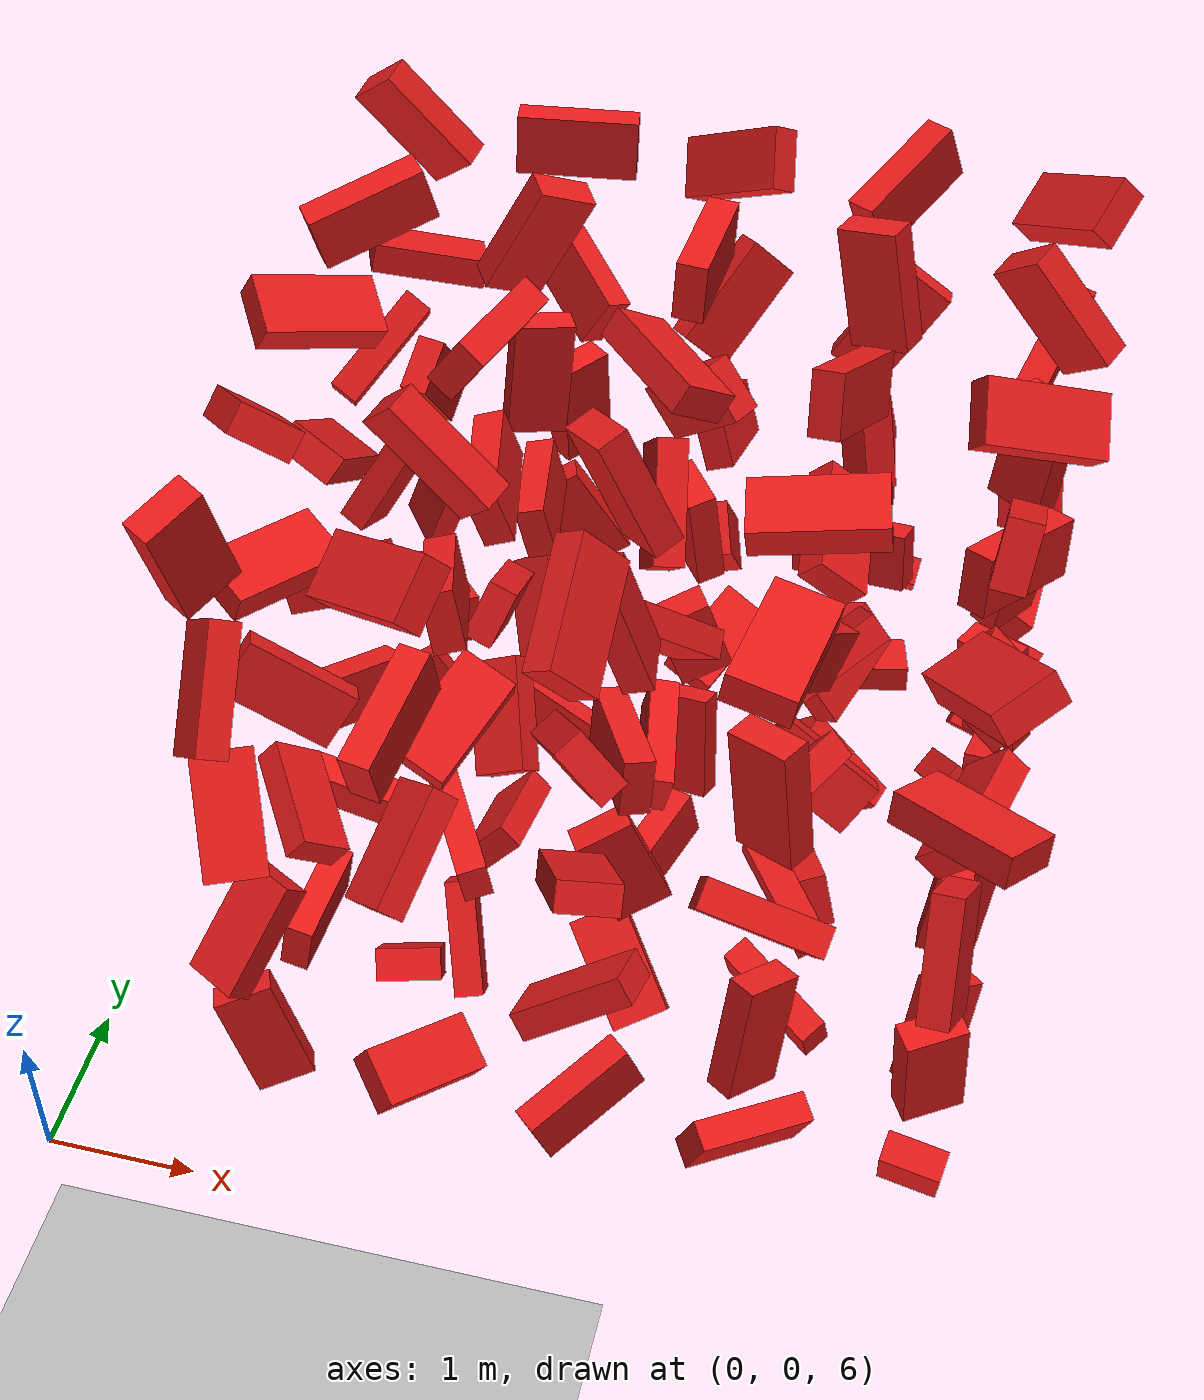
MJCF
<mujoco model="Humanoid and 100 objects">
    <compiler angle="degree"/>

    <option timestep="0.01" iterations="50" solver="PGS" jacobian="sparse" cone="elliptic" tolerance="1e-10"/>

    <size njmax="5000" nconmax="2000" nstack="1000000000"/>

    <default>
        <geom solimp=".9 .9 .01"/>

        <default class="object5">
			<geom type="box" material="geom" rgba=".9 .1 .1 1" size="0.400000 0.200000 0.100000"/>
        </default>
    </default>

    <asset>
        <texture type="skybox" builtin="gradient" width="128" height="128" rgb1=".4 .6 .8" rgb2="0 0 0"/>
        <texture name="texgeom" type="cube" builtin="flat" mark="cross" width="128" height="128"
            rgb1="0.6 0.6 0.6" rgb2="0.6 0.6 0.6" markrgb="1 1 1"/>
        <texture name="texplane" type="2d" builtin="checker" rgb1=".4 .4 .4" rgb2=".6 .6 .6"
            width="512" height="512"/>
        <material name='geom' texture="texgeom" texuniform="true"/>
        <material name='MatPlane' reflectance='0.3' texture="texplane" texrepeat="1 1" texuniform="true"/>
    </asset>

    <visual>
        <quality shadowsize="4096" offsamples="8"/>
        <map znear="0.1" force="0.05"/>
    </visual>

    <statistic extent="4"/>

    <worldbody>
        <light directional="true" diffuse=".8 .8 .8" pos="0 0 10" dir="0 0 -10"/>

        <geom pos="0 0 0" type="plane" size="3 3 .5" rgba=".7 .7 .7 1" material="MatPlane"/>
		<body pos="1.100061 1.100535 6.100487" quat="0.704673 0.416221 0.464231 -0.338654"> <freejoint/> <geom class="object5"/> </body>
		<body pos="1.100556 1.100531 7.200384" quat="0.468841 0.335573 0.169987 -0.799177"> <freejoint/> <geom class="object5"/> </body>
		<body pos="1.100150 1.100321 8.300873" quat="0.504620 0.301904 -0.173742 0.789954"> <freejoint/> <geom class="object5"/> </body>
		<body pos="1.100852 1.100389 9.400680" quat="-0.063000 -0.672238 -0.499796 -0.542523"> <freejoint/> <geom class="object5"/> </body>
		<body pos="1.100582 1.100323 10.500027" quat="0.664069 0.298463 0.680334 -0.084129"> <freejoint/> <geom class="object5"/> </body>
		<body pos="1.100997 2.200310 6.100272" quat="-0.436670 0.534024 -0.550363 0.470359"> <freejoint/> <geom class="object5"/> </body>
		<body pos="1.100860 2.200497 7.200872" quat="0.415994 0.256129 0.259776 0.832985"> <freejoint/> <geom class="object5"/> </body>
		<body pos="1.100983 2.200670 8.300147" quat="-0.812085 -0.497435 -0.287675 0.101585"> <freejoint/> <geom class="object5"/> </body>
		<body pos="1.100398 2.200049 9.400501" quat="-0.134124 -0.464464 0.870096 0.096005"> <freejoint/> <geom class="object5"/> </body>
		<body pos="1.100354 2.200086 10.500407" quat="-0.063682 -0.495941 -0.768959 0.398358"> <freejoint/> <geom class="object5"/> </body>
		<body pos="1.100213 3.300297 6.100576" quat="0.629227 0.773109 -0.033692 -0.072392"> <freejoint/> <geom class="object5"/> </body>
		<body pos="1.100501 3.300758 7.200293" quat="0.443370 0.286420 -0.698497 -0.483206"> <freejoint/> <geom class="object5"/> </body>
		<body pos="1.100659 3.300858 8.300393" quat="0.288240 0.722197 0.628343 0.023131"> <freejoint/> <geom class="object5"/> </body>
		<body pos="1.100634 3.300380 9.400091" quat="-0.385703 -0.597516 0.700863 -0.054757"> <freejoint/> <geom class="object5"/> </body>
		<body pos="1.100766 3.300747 10.500470" quat="-0.155912 0.915060 0.299749 -0.220244"> <freejoint/> <geom class="object5"/> </body>
		<body pos="1.100312 4.400310 6.100719" quat="0.307336 0.087487 0.622277 -0.714606"> <freejoint/> <geom class="object5"/> </body>
		<body pos="1.100891 4.400625 7.200060" quat="0.735603 0.603398 -0.300745 0.065968"> <freejoint/> <geom class="object5"/> </body>
		<body pos="1.100348 4.400365 8.300513" quat="0.511188 -0.039595 0.831201 -0.214998"> <freejoint/> <geom class="object5"/> </body>
		<body pos="1.100847 4.400034 9.400777" quat="-0.293703 -0.420367 0.261925 0.817573"> <freejoint/> <geom class="object5"/> </body>
		<body pos="1.100584 4.400867 10.500522" quat="-0.297311 0.135376 -0.721807 0.610143"> <freejoint/> <geom class="object5"/> </body>
		<body pos="1.100407 5.500135 6.100582" quat="-0.582620 0.684326 -0.274092 0.342235"> <freejoint/> <geom class="object5"/> </body>
		<body pos="1.100830 5.500063 7.200237" quat="0.177933 0.548926 0.313575 -0.754116"> <freejoint/> <geom class="object5"/> </body>
		<body pos="1.100684 5.500898 8.300058" quat="-0.673669 -0.170733 0.659921 0.285524"> <freejoint/> <geom class="object5"/> </body>
		<body pos="1.100824 5.500869 9.400630" quat="0.169850 -0.098421 -0.134963 -0.971210"> <freejoint/> <geom class="object5"/> </body>
		<body pos="1.100029 5.500807 10.500675" quat="-0.533394 -0.740341 -0.255958 0.319174"> <freejoint/> <geom class="object5"/> </body>
		<body pos="2.200226 1.100040 6.100089" quat="-0.388415 0.235299 -0.158183 0.876782"> <freejoint/> <geom class="object5"/> </body>
		<body pos="2.200525 1.100830 7.200518" quat="-0.255966 -0.724682 0.546622 -0.332450"> <freejoint/> <geom class="object5"/> </body>
		<body pos="2.200554 1.100639 8.300754" quat="-0.079167 -0.775439 -0.491007 -0.389023"> <freejoint/> <geom class="object5"/> </body>
		<body pos="2.200516 1.100249 9.400637" quat="0.382689 0.515924 -0.472985 -0.603040"> <freejoint/> <geom class="object5"/> </body>
		<body pos="2.200840 1.100213 10.500720" quat="0.254940 -0.912648 0.190472 -0.256514"> <freejoint/> <geom class="object5"/> </body>
		<body pos="2.200339 2.200549 6.100856" quat="-0.185170 -0.582067 -0.342579 -0.713827"> <freejoint/> <geom class="object5"/> </body>
		<body pos="2.200908 2.200950 7.200705" quat="-0.689600 0.523398 -0.387884 0.316311"> <freejoint/> <geom class="object5"/> </body>
		<body pos="2.200913 2.200094 8.300297" quat="0.560727 0.039385 0.243092 -0.790531"> <freejoint/> <geom class="object5"/> </body>
		<body pos="2.200561 2.200956 9.400727" quat="0.544676 -0.574734 0.289922 -0.537545"> <freejoint/> <geom class="object5"/> </body>
		<body pos="2.200724 2.200046 10.500585" quat="-0.336993 -0.144731 0.777345 -0.511101"> <freejoint/> <geom class="object5"/> </body>
		<body pos="2.200494 3.300089 6.100841" quat="0.194887 -0.664356 0.618045 -0.372385"> <freejoint/> <geom class="object5"/> </body>
		<body pos="2.200230 3.300778 7.200992" quat="0.071278 -0.604693 -0.675311 -0.416198"> <freejoint/> <geom class="object5"/> </body>
		<body pos="2.200310 3.300812 8.300856" quat="-0.524733 -0.423338 -0.698254 -0.240587"> <freejoint/> <geom class="object5"/> </body>
		<body pos="2.200676 3.300955 9.400050" quat="0.391804 -0.496748 -0.629360 0.451261"> <freejoint/> <geom class="object5"/> </body>
		<body pos="2.200971 3.300370 10.500655" quat="0.268507 -0.552094 0.691408 -0.380856"> <freejoint/> <geom class="object5"/> </body>
		<body pos="2.200533 4.400831 6.100682" quat="0.038412 -0.202173 -0.795197 -0.570362"> <freejoint/> <geom class="object5"/> </body>
		<body pos="2.200699 4.400418 7.200152" quat="0.494917 -0.637914 0.589513 0.024427"> <freejoint/> <geom class="object5"/> </body>
		<body pos="2.200164 4.400746 8.300430" quat="-0.484746 -0.587678 0.515394 0.392460"> <freejoint/> <geom class="object5"/> </body>
		<body pos="2.200267 4.400285 9.400607" quat="-0.584482 0.433253 0.605306 0.322920"> <freejoint/> <geom class="object5"/> </body>
		<body pos="2.200924 4.400107 10.500909" quat="0.474855 0.213387 0.741204 -0.423787"> <freejoint/> <geom class="object5"/> </body>
		<body pos="2.200991 5.500023 6.100395" quat="0.571252 0.579045 -0.276950 -0.511544"> <freejoint/> <geom class="object5"/> </body>
		<body pos="2.200202 5.500196 7.200852" quat="0.420239 -0.266347 -0.681017 -0.537284"> <freejoint/> <geom class="object5"/> </body>
		<body pos="2.200297 5.500896 8.300991" quat="-0.672321 -0.247202 -0.665057 0.211128"> <freejoint/> <geom class="object5"/> </body>
		<body pos="2.200252 5.500426 9.400509" quat="-0.415164 0.071746 0.566929 -0.707872"> <freejoint/> <geom class="object5"/> </body>
		<body pos="2.200750 5.500480 10.500999" quat="-0.052612 0.065567 -0.656690 0.749461"> <freejoint/> <geom class="object5"/> </body>
		<body pos="3.300622 1.100450 6.100910" quat="0.664250 -0.610453 -0.396957 0.168952"> <freejoint/> <geom class="object5"/> </body>
		<body pos="3.300188 1.100266 7.200174" quat="0.019612 0.291696 -0.196875 -0.935825"> <freejoint/> <geom class="object5"/> </body>
		<body pos="3.300350 1.100529 8.300992" quat="-0.775230 0.256603 0.204494 0.539774"> <freejoint/> <geom class="object5"/> </body>
		<body pos="3.300469 1.100146 9.400217" quat="0.531723 0.633197 -0.562416 0.004552"> <freejoint/> <geom class="object5"/> </body>
		<body pos="3.300305 1.100776 10.500728" quat="-0.462159 0.534963 0.680196 -0.193796"> <freejoint/> <geom class="object5"/> </body>
		<body pos="3.300940 2.200016 6.100614" quat="-0.829967 -0.288970 -0.182973 0.440651"> <freejoint/> <geom class="object5"/> </body>
		<body pos="3.300386 2.200254 7.200769" quat="-0.438515 0.687755 -0.246610 -0.523337"> <freejoint/> <geom class="object5"/> </body>
		<body pos="3.300777 2.200962 8.300392" quat="0.343432 -0.397271 -0.529486 0.666239"> <freejoint/> <geom class="object5"/> </body>
		<body pos="3.300390 2.200622 9.400815" quat="0.796759 -0.007551 0.599311 0.077098"> <freejoint/> <geom class="object5"/> </body>
		<body pos="3.300602 2.200444 10.500682" quat="0.321195 0.778506 0.210005 -0.496648"> <freejoint/> <geom class="object5"/> </body>
		<body pos="3.300143 3.300173 6.100753" quat="-0.576984 -0.578996 -0.333013 -0.470059"> <freejoint/> <geom class="object5"/> </body>
		<body pos="3.300190 3.300647 7.200788" quat="-0.544721 0.535738 -0.545151 0.345071"> <freejoint/> <geom class="object5"/> </body>
		<body pos="3.300109 3.300920 8.300029" quat="0.199619 0.412192 -0.784870 0.417407"> <freejoint/> <geom class="object5"/> </body>
		<body pos="3.300916 3.300698 9.400887" quat="0.137752 0.641931 0.415340 0.629636"> <freejoint/> <geom class="object5"/> </body>
		<body pos="3.300441 3.300700 10.500609" quat="-0.257653 -0.885642 0.360200 0.139674"> <freejoint/> <geom class="object5"/> </body>
		<body pos="3.300296 4.400049 6.100708" quat="-0.502345 0.537019 -0.598550 -0.317803"> <freejoint/> <geom class="object5"/> </body>
		<body pos="3.300078 4.400932 7.200007" quat="-0.462981 0.619791 -0.219889 -0.594270"> <freejoint/> <geom class="object5"/> </body>
		<body pos="3.300183 4.400224 8.300956" quat="-0.625830 -0.255491 0.715270 -0.177344"> <freejoint/> <geom class="object5"/> </body>
		<body pos="3.300878 4.400600 9.400524" quat="-0.592915 0.663852 0.054832 0.452489"> <freejoint/> <geom class="object5"/> </body>
		<body pos="3.300542 4.400700 10.500986" quat="-0.465333 0.510191 -0.512416 0.510491"> <freejoint/> <geom class="object5"/> </body>
		<body pos="3.300193 5.500202 6.100338" quat="-0.805416 -0.229021 -0.019490 -0.546327"> <freejoint/> <geom class="object5"/> </body>
		<body pos="3.300831 5.500025 7.200667" quat="0.321959 -0.625511 0.151482 -0.694357"> <freejoint/> <geom class="object5"/> </body>
		<body pos="3.300651 5.500441 8.300610" quat="-0.478907 -0.488716 0.656685 0.317128"> <freejoint/> <geom class="object5"/> </body>
		<body pos="3.300021 5.500322 9.400370" quat="-0.517923 -0.014535 -0.608857 0.600697"> <freejoint/> <geom class="object5"/> </body>
		<body pos="3.300530 5.500597 10.500314" quat="-0.310554 -0.080759 -0.856162 -0.404995"> <freejoint/> <geom class="object5"/> </body>
		<body pos="4.400689 1.100146 6.100979" quat="0.767389 -0.553592 -0.122161 0.299544"> <freejoint/> <geom class="object5"/> </body>
		<body pos="4.400602 1.100906 7.200164" quat="-0.668309 -0.108662 -0.655725 0.334037"> <freejoint/> <geom class="object5"/> </body>
		<body pos="4.400561 1.100961 8.300484" quat="-0.055976 0.130393 0.441547 0.885946"> <freejoint/> <geom class="object5"/> </body>
		<body pos="4.400282 1.100703 9.400623" quat="-0.306521 0.587170 0.409502 0.627363"> <freejoint/> <geom class="object5"/> </body>
		<body pos="4.400892 1.100336 10.500619" quat="-0.059497 -0.653594 0.752879 0.049484"> <freejoint/> <geom class="object5"/> </body>
		<body pos="4.400912 2.200238 6.100323" quat="0.252862 -0.195692 -0.795884 0.514134"> <freejoint/> <geom class="object5"/> </body>
		<body pos="4.400668 2.200617 7.200081" quat="-0.399207 0.173772 0.777480 -0.453831"> <freejoint/> <geom class="object5"/> </body>
		<body pos="4.400178 2.200399 8.300425" quat="0.146532 -0.589953 0.653329 -0.451271"> <freejoint/> <geom class="object5"/> </body>
		<body pos="4.400973 2.200361 9.400977" quat="-0.657821 -0.452660 -0.579751 -0.162045"> <freejoint/> <geom class="object5"/> </body>
		<body pos="4.400488 2.200794 10.500575" quat="-0.052396 0.082091 -0.991785 -0.082937"> <freejoint/> <geom class="object5"/> </body>
		<body pos="4.400717 3.300597 6.100971" quat="0.241472 -0.517474 -0.550070 0.609373"> <freejoint/> <geom class="object5"/> </body>
		<body pos="4.400920 3.300139 7.200049" quat="-0.460723 0.837583 -0.194059 -0.220297"> <freejoint/> <geom class="object5"/> </body>
		<body pos="4.400763 3.300159 8.300848" quat="-0.310962 0.251307 -0.883269 0.244914"> <freejoint/> <geom class="object5"/> </body>
		<body pos="4.400778 3.300440 9.400109" quat="-0.708402 0.212272 -0.316115 0.594288"> <freejoint/> <geom class="object5"/> </body>
		<body pos="4.400081 3.300760 10.500694" quat="0.408557 -0.677177 -0.345322 0.505238"> <freejoint/> <geom class="object5"/> </body>
		<body pos="4.400116 4.400867 6.100553" quat="0.567680 0.725999 0.181272 -0.343228"> <freejoint/> <geom class="object5"/> </body>
		<body pos="4.400012 4.400955 7.200695" quat="-0.539739 0.208224 -0.457735 0.675132"> <freejoint/> <geom class="object5"/> </body>
		<body pos="4.400227 4.400151 8.300986" quat="0.782832 0.610555 -0.114775 -0.034978"> <freejoint/> <geom class="object5"/> </body>
		<body pos="4.400815 4.400420 9.400006" quat="-0.632437 -0.071214 0.704519 -0.314016"> <freejoint/> <geom class="object5"/> </body>
		<body pos="4.400333 4.400721 10.500144" quat="0.480506 0.609466 0.324777 -0.540542"> <freejoint/> <geom class="object5"/> </body>
		<body pos="4.400997 5.500872 6.100807" quat="-0.008747 0.103674 -0.991148 0.082473"> <freejoint/> <geom class="object5"/> </body>
		<body pos="4.400226 5.500323 7.200216" quat="-0.059411 -0.004346 0.906310 -0.418394"> <freejoint/> <geom class="object5"/> </body>
		<body pos="4.400044 5.500804 8.300681" quat="0.435580 -0.494176 -0.597974 0.456604"> <freejoint/> <geom class="object5"/> </body>
		<body pos="4.400789 5.500989 9.400028" quat="0.529713 -0.693238 -0.399425 -0.281574"> <freejoint/> <geom class="object5"/> </body>
		<body pos="4.400426 5.500912 10.500763" quat="0.212067 0.453276 -0.574758 -0.647473"> <freejoint/> <geom class="object5"/> </body>
		<body pos="5.500067 1.100080 6.100893" quat="-0.326510 -0.623496 -0.570947 0.422686"> <freejoint/> <geom class="object5"/> </body>
		<body pos="5.500407 1.100628 7.200076" quat="0.320388 0.611139 -0.379722 0.616175"> <freejoint/> <geom class="object5"/> </body>
		<body pos="5.500161 1.100898 8.300690" quat="0.709086 -0.138855 0.640233 -0.260804"> <freejoint/> <geom class="object5"/> </body>
		<body pos="5.500054 1.100633 9.400196" quat="-0.948225 0.161304 0.019870 0.272864"> <freejoint/> <geom class="object5"/> </body>
		<body pos="5.500816 1.100792 10.500418" quat="-0.413764 0.295348 0.041454 -0.860146"> <freejoint/> <geom class="object5"/> </body>
		<body pos="5.500677 2.200273 6.100365" quat="0.419662 0.614993 -0.153620 0.649668"> <freejoint/> <geom class="object5"/> </body>
		<body pos="5.500099 2.200923 7.200004" quat="0.458025 0.537554 0.400780 0.583630"> <freejoint/> <geom class="object5"/> </body>
		<body pos="5.500352 2.200869 8.300612" quat="0.724114 -0.322520 -0.298018 0.531813"> <freejoint/> <geom class="object5"/> </body>
		<body pos="5.500332 2.200209 9.400462" quat="0.135013 -0.723732 -0.591741 0.328368"> <freejoint/> <geom class="object5"/> </body>
		<body pos="5.500050 2.200326 10.500296" quat="0.637639 0.304594 -0.604490 -0.367738"> <freejoint/> <geom class="object5"/> </body>
		<body pos="5.500216 3.300326 6.100352" quat="0.493310 -0.559828 -0.516074 -0.420601"> <freejoint/> <geom class="object5"/> </body>
		<body pos="5.500046 3.300573 7.200849" quat="-0.328721 -0.870054 -0.144365 0.337798"> <freejoint/> <geom class="object5"/> </body>
		<body pos="5.500147 3.300244 8.300201" quat="-0.659533 0.372410 -0.560480 -0.334948"> <freejoint/> <geom class="object5"/> </body>
		<body pos="5.500600 3.300227 9.400553" quat="-0.299658 0.367352 -0.553728 0.684575"> <freejoint/> <geom class="object5"/> </body>
		<body pos="5.500060 3.300801 10.500010" quat="-0.917743 -0.313338 -0.203586 -0.134610"> <freejoint/> <geom class="object5"/> </body>
		<body pos="5.500187 4.400054 6.100930" quat="0.155450 0.684494 0.064297 0.709344"> <freejoint/> <geom class="object5"/> </body>
		<body pos="5.500162 4.400000 7.200862" quat="-0.266423 -0.450088 0.737302 -0.427581"> <freejoint/> <geom class="object5"/> </body>
		<body pos="5.500273 4.400948 8.300015" quat="0.616740 0.245461 0.724226 -0.186757"> <freejoint/> <geom class="object5"/> </body>
		<body pos="5.500600 4.400253 9.400601" quat="-0.569269 0.352212 -0.667838 -0.325380"> <freejoint/> <geom class="object5"/> </body>
		<body pos="5.500774 4.400343 10.500063" quat="0.383837 0.163843 -0.765292 0.490054"> <freejoint/> <geom class="object5"/> </body>
		<body pos="5.500797 5.500920 6.100562" quat="-0.734515 -0.331079 0.150466 -0.572918"> <freejoint/> <geom class="object5"/> </body>
		<body pos="5.500752 5.500683 7.200521" quat="0.203805 0.656585 -0.696050 -0.207063"> <freejoint/> <geom class="object5"/> </body>
		<body pos="5.500460 5.500259 8.300344" quat="0.558615 0.500007 0.111124 -0.652375"> <freejoint/> <geom class="object5"/> </body>
		<body pos="5.500273 5.500754 9.400779" quat="0.376750 0.709396 0.298667 0.515378"> <freejoint/> <geom class="object5"/> </body>
		<body pos="5.500686 5.500020 10.500237" quat="-0.318768 -0.276977 -0.882404 -0.207445"> <freejoint/> <geom class="object5"/> </body>

    </worldbody>
</mujoco>
